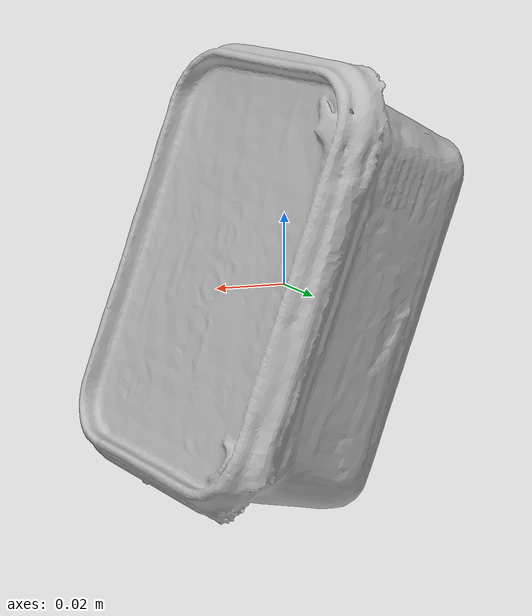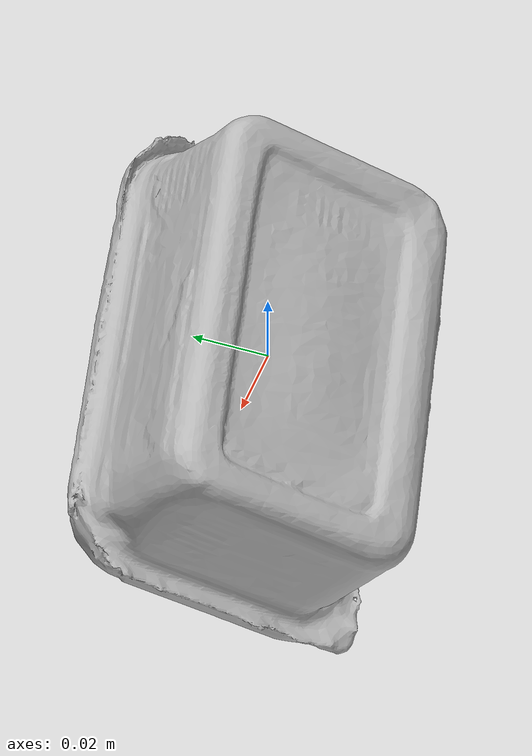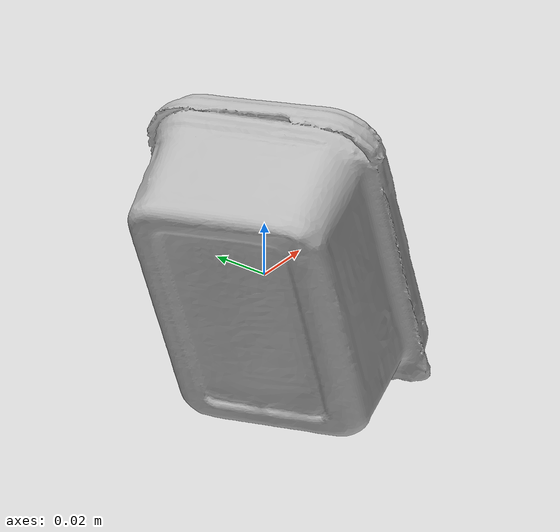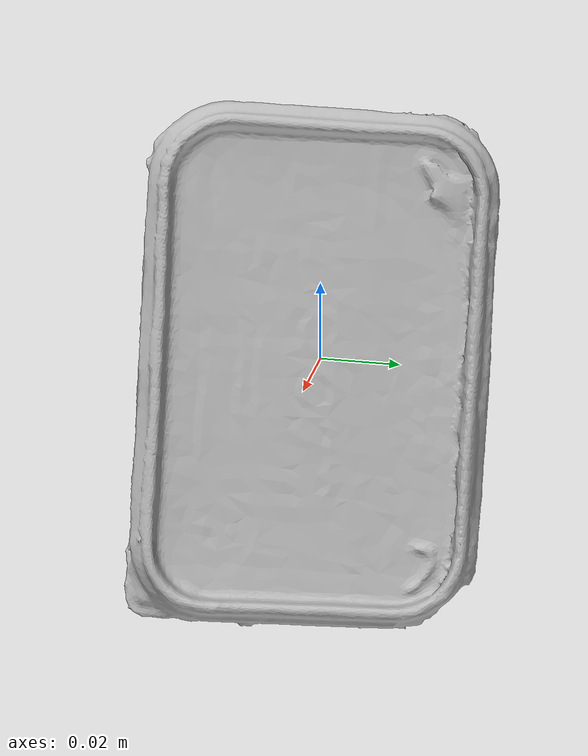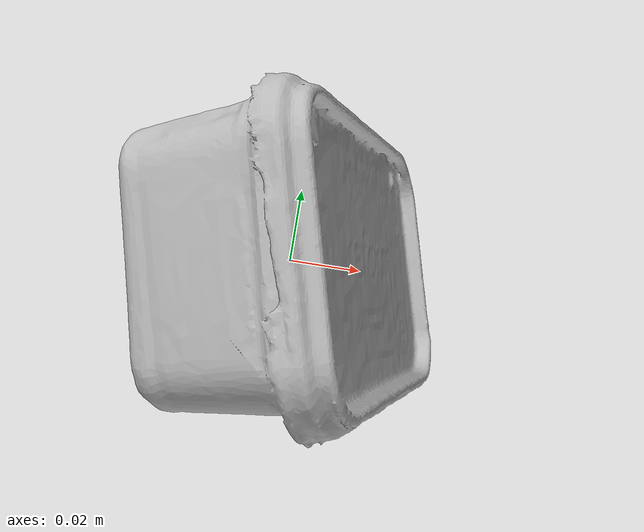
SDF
<?xml version='1.0'?>
<sdf version="1.4">
  <model name="Margarine">
    <static>false</static>
    <link name="link">
      <inertial>
        <pose>0.004121684116181891 -0.001702810435398261 -0.00038786366479085156 0.11270412233425137 0.32244956695371046 -2.824623532216657</pose>
        <mass>0.04575422602263924</mass>
        <inertia>
          <ixx>7.290584034650822e-05</ixx>
          <ixy>-4.729541005349859e-21</ixy>
          <ixz>-7.120263875371096e-21</ixz>
          <iyy>5.994002122909337e-05</iyy>
          <iyz>-3.2812359319373663e-21</iyz>
          <izz>3.214324359148403e-05</izz>
        </inertia>
      </inertial>
      <collision name="collision">
        <geometry>
          <mesh>
            <!-- Use a downsampled mesh for collisions -->
            <uri>model:///Margarine/Margarine_250_collision.obj</uri>
	        </mesh>
        </geometry>
        <surface>
      </surface>
      </collision>
      <visual name="visual">
        <geometry>
          <mesh>
            <uri>model:///Margarine/Margarine_25k_tex.obj</uri>
	        </mesh>
        </geometry>
        <material>
          <script>
            <uri>model:///Margarine/Margarine.material</uri>
            <name>Margarine</name>
          </script>
        </material>
      </visual>
    </link>
  </model>
</sdf>
